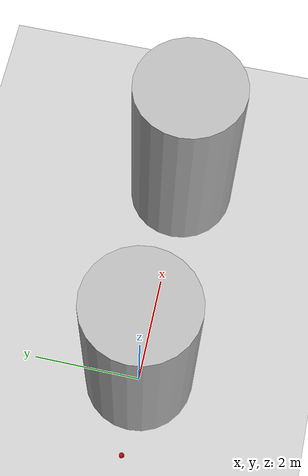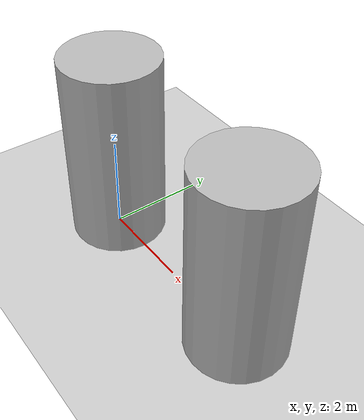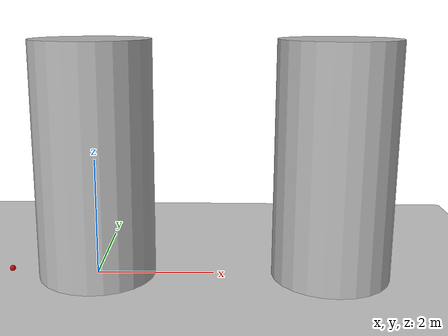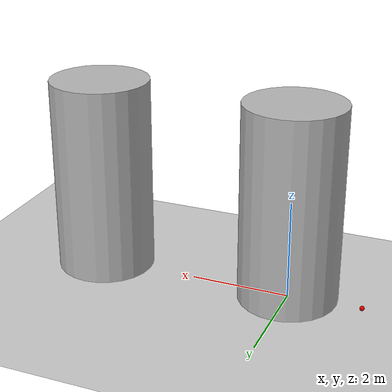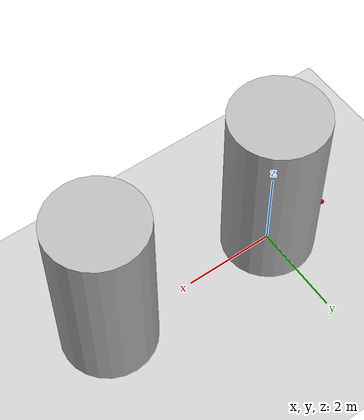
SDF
<?xml version="1.0" ?>
<sdf version="1.6">
    <world name="orchard">
        <include><uri>model://ground_plane</uri></include>
        <include><uri>model://sun</uri></include>

        <model name="tree1">
  <static>true</static>
  <pose>0 0 2 0 0 0</pose>
  <link name="link">
    <visual name="visual">
      <geometry><cylinder><radius>1</radius><length>4</length></cylinder></geometry>
    </visual>
    <collision name="collision">
      <geometry><cylinder><radius>1</radius><length>4</length></cylinder></geometry>
    </collision>
  </link>
</model>

<model name="tree2">
  <static>true</static>
  <pose>4 0 2 0 0 0</pose>
  <link name="link">
    <visual name="visual">
      <geometry><cylinder><radius>1</radius><length>4</length></cylinder></geometry>
    </visual>
    <collision name="collision">
      <geometry><cylinder><radius>1</radius><length>4</length></cylinder></geometry>
    </collision>
  </link>
</model>

        <model name="tomato1">
            <static>true</static>
            <pose>-1.5 0 0.05 0 0 0</pose>
            <link name="link">
                <visual name="visual">
                    <geometry><sphere><radius>0.05</radius></sphere></geometry>
                    <material>
                        <ambient>0.8 0.0 0.0 1</ambient>
                        <diffuse>0.8 0.0 0.0 1</diffuse>
                        <specular>0.1 0.1 0.1 1</specular>
                    </material>
                </visual>
                <collision name="collision">
                    <geometry><sphere><radius>0.05</radius></sphere></geometry>
                </collision>
            </link>
        </model>
    </world>
</sdf>
